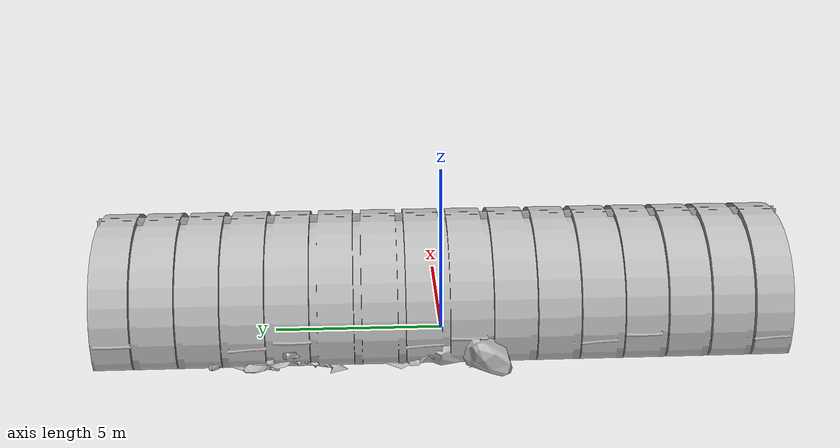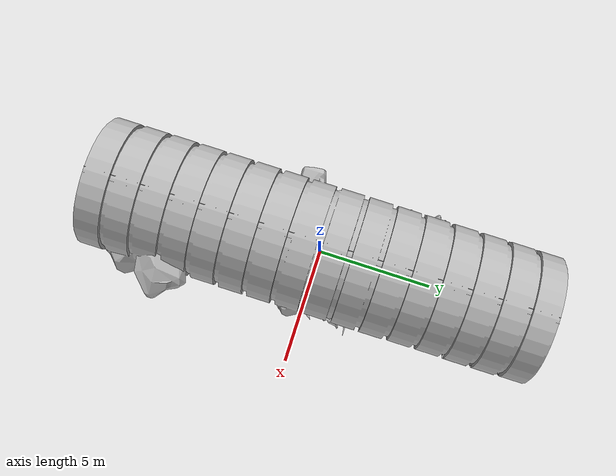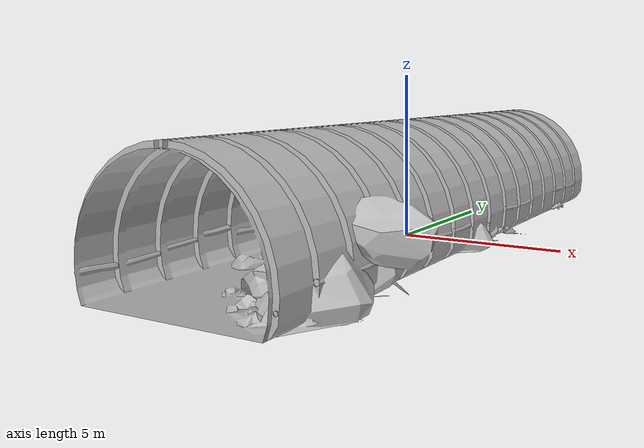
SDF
<?xml version="1.0" ?>
<sdf version="1.6">
  <model name="rough_tunnel_tile_straight">
    <static>true</static>
    <link name="link">
      <collision name="collision">
        <geometry>
          <mesh>
            <uri>model://rough_tunnel_tile_straight/meshes/Straight_Collider.DAE</uri>
          </mesh>
        </geometry>
      </collision>
      <collision name="collision_ground">
        <geometry>
          <box>
            <size>5 20 0.001</size>
          </box>
        </geometry>
      </collision>
      <visual name="visual">
        <geometry>
          <mesh>
            <uri>model://rough_tunnel_tile_straight/meshes/Straight.DAE</uri>
          </mesh>
        </geometry>
      </visual>
    </link>
  </model>
</sdf>
